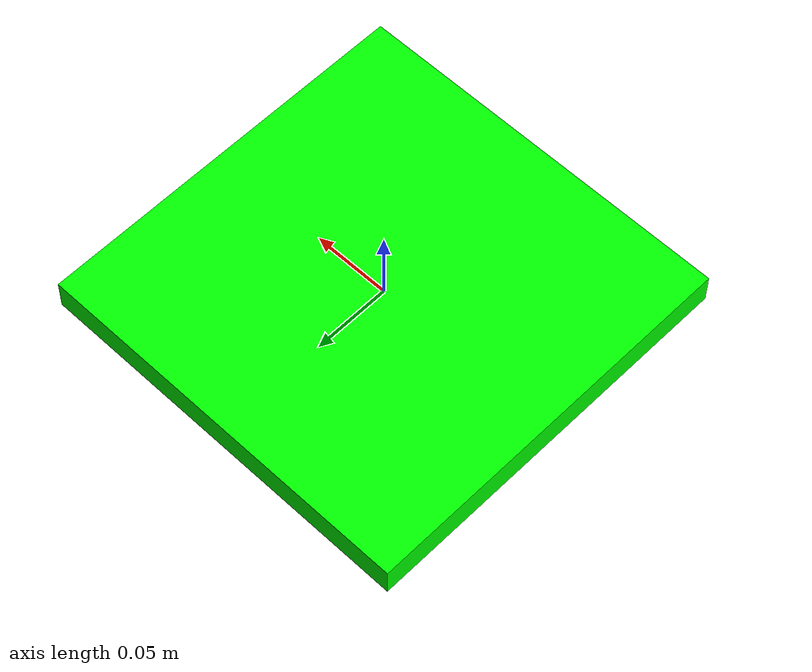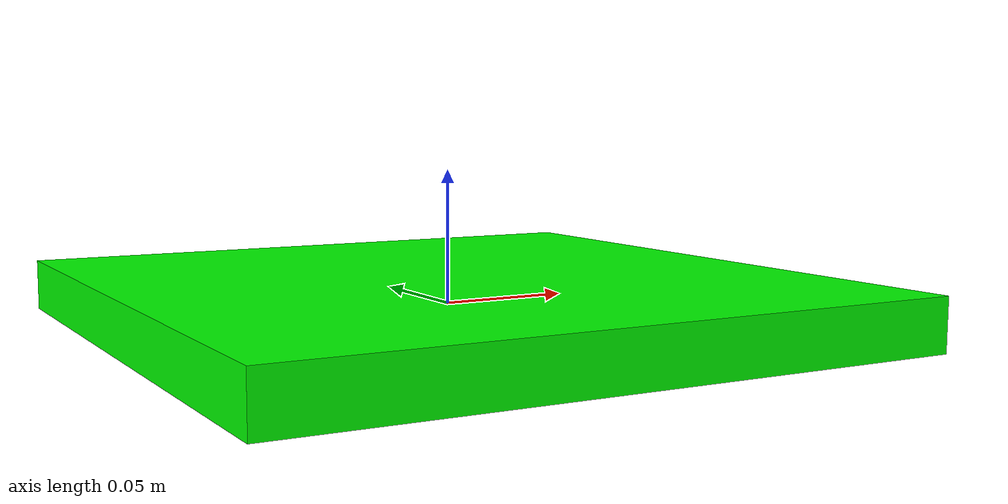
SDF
<?xml version="1.0"?>
<sdf version="1.7">
  <model name="box_green">
    <link name="box_link_green">
      <inertial>
        <pose>0.0 0.0 0.0 0.0 0.0 0.0</pose>
        <mass>0.5</mass>
        <inertia>
          <ixx>0.00052</ixx>
          <ixy>0</ixy>
          <ixz>0</ixz>
          <iyy>0.00052</iyy>
          <iyz>0</iyz>
          <izz>0.00085</izz>
        </inertia>
      </inertial>
      <visual name="visual">
        <pose>0 0 0. 0 0 0</pose>
        <geometry>
          <box>
            <size>0.25 0.25 0.02</size>
          </box>
        </geometry>
        <material>
         <diffuse>0 1 0 1</diffuse>
        </material>
      </visual>
      <collision name="collision">
        <pose>0 0 0. 0 0 0</pose>
        <geometry>
          <box>
            <size>0.25 0.25 0.02</size>
          </box>
        </geometry>
        <!-- From https://github.com/bernhardpg/planning-through-contact/blob/main/planning_through_contact/simulation/models/t_pusher.sdf -->
        <drake:proximity_properties>
          <drake:compliant_hydroelastic/>
          <drake:hunt_crossley_dissipation>3.0</drake:hunt_crossley_dissipation>
          <drake:hydroelastic_modulus>1e7</drake:hydroelastic_modulus>
          <drake:mesh_resolution_hint>0.005</drake:mesh_resolution_hint>
          <drake:mu_dynamic>0.5</drake:mu_dynamic>
          <drake:mu_static>0.5</drake:mu_static>
        </drake:proximity_properties>
      </collision>
    </link>
    <frame name="box_center_green">
      <pose relative_to="box_link_green">0 0 0. 0 0 0</pose>
    </frame>
  </model>
</sdf>
